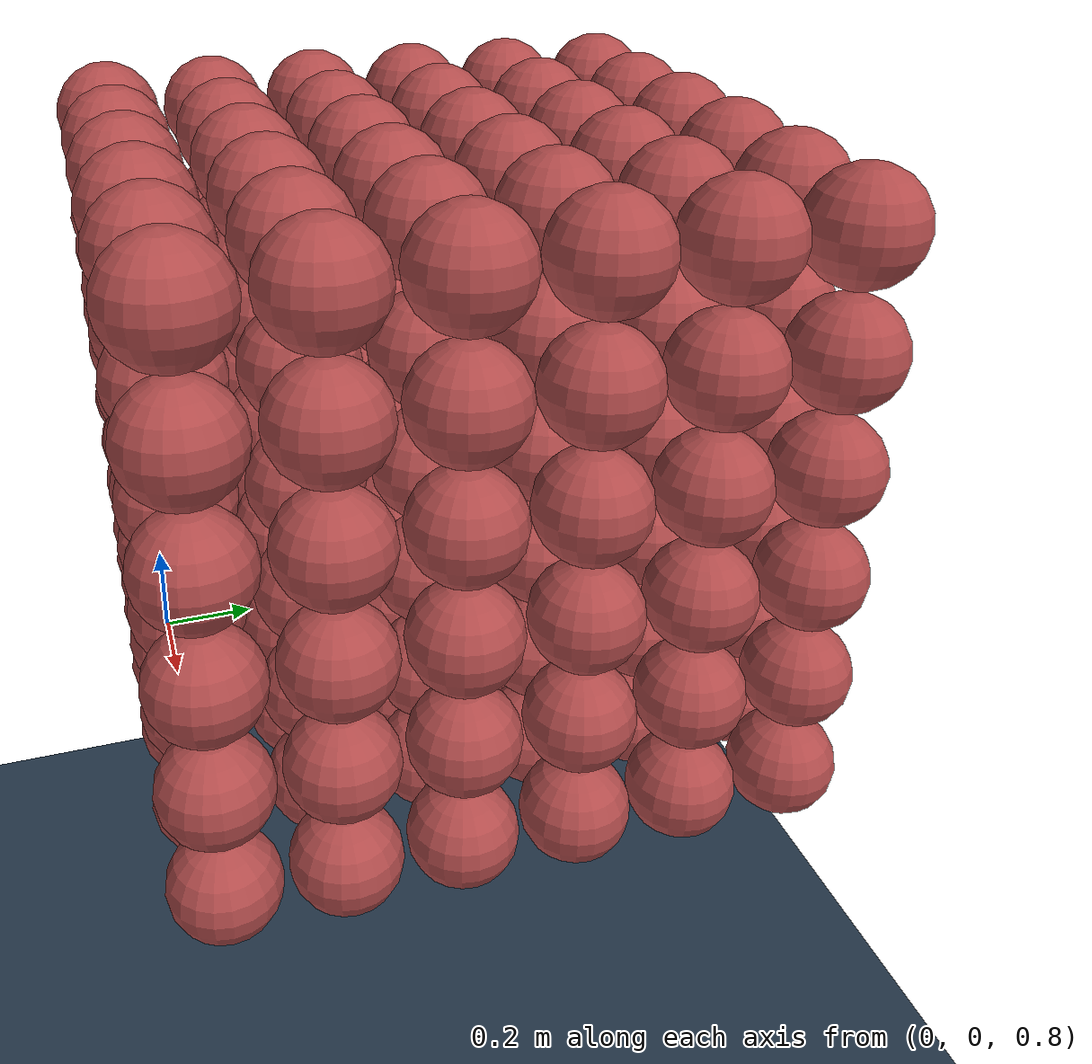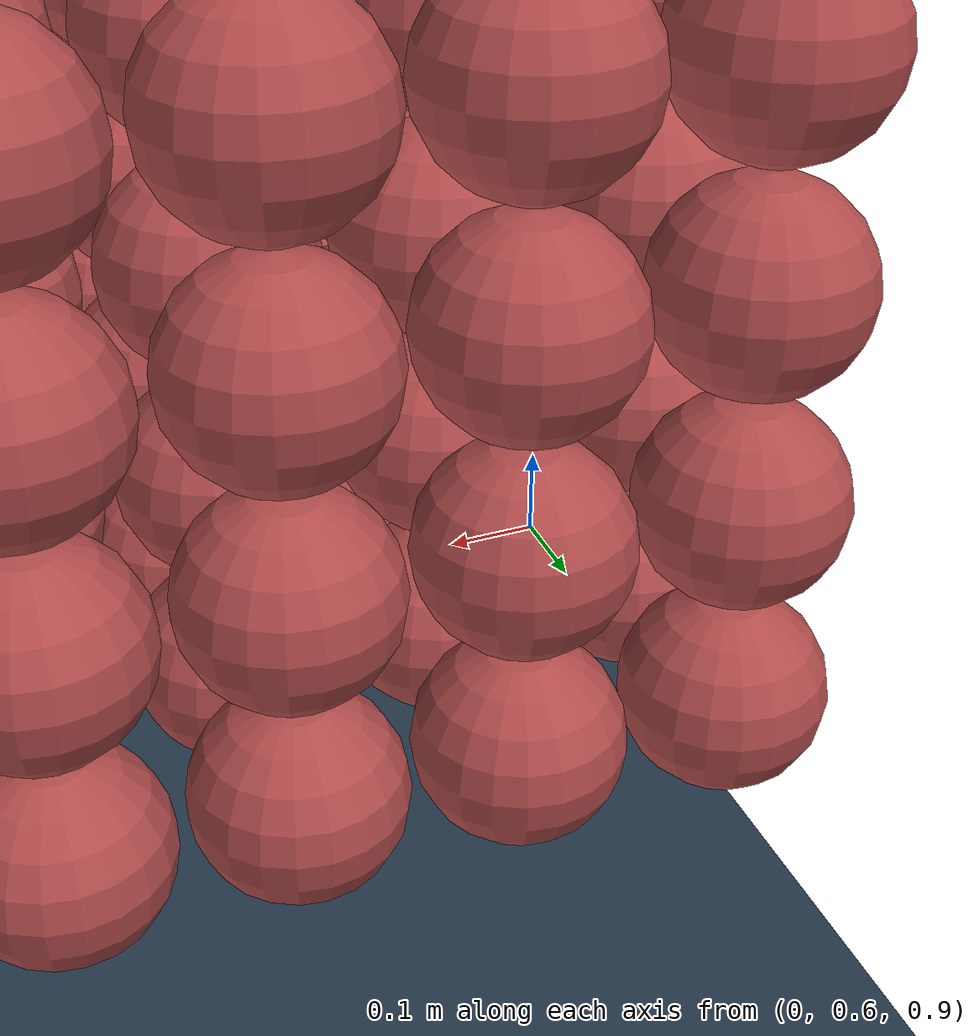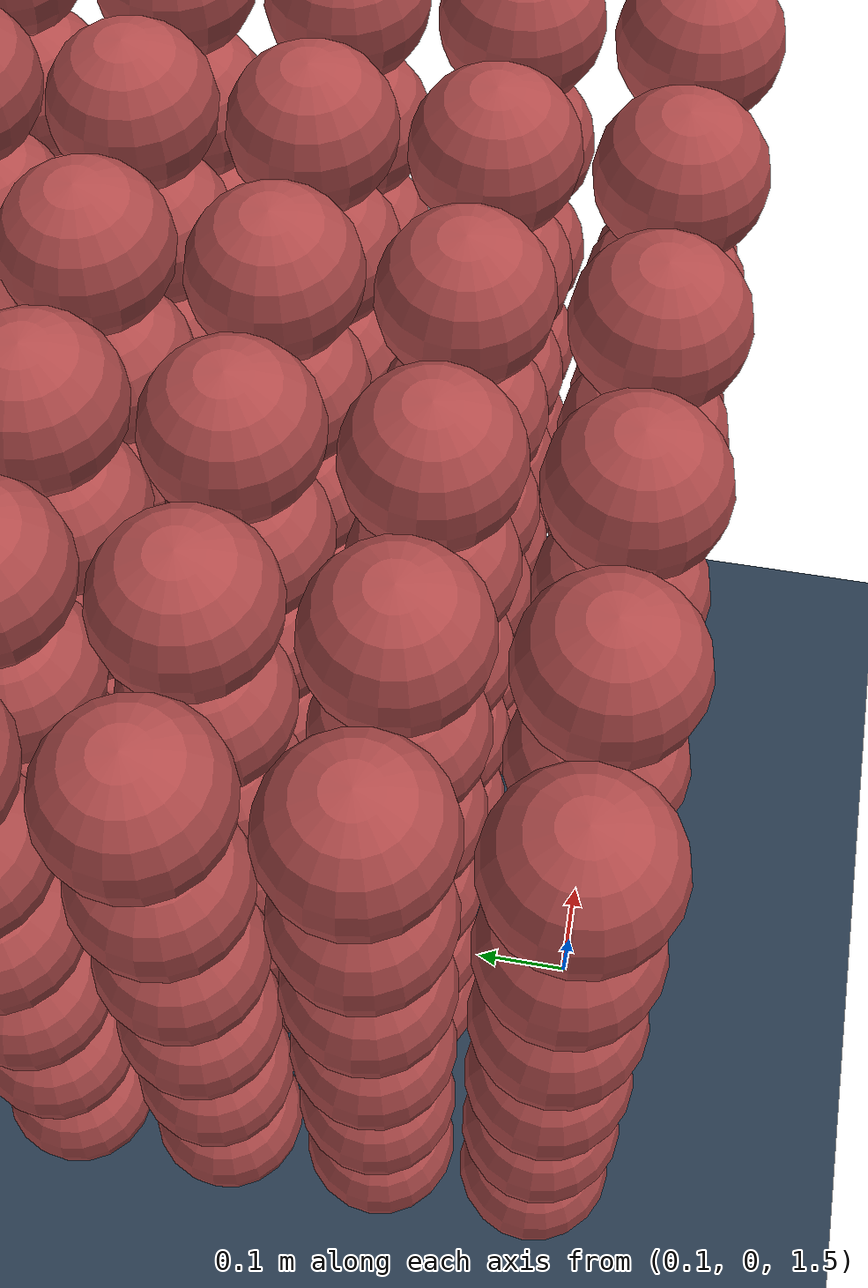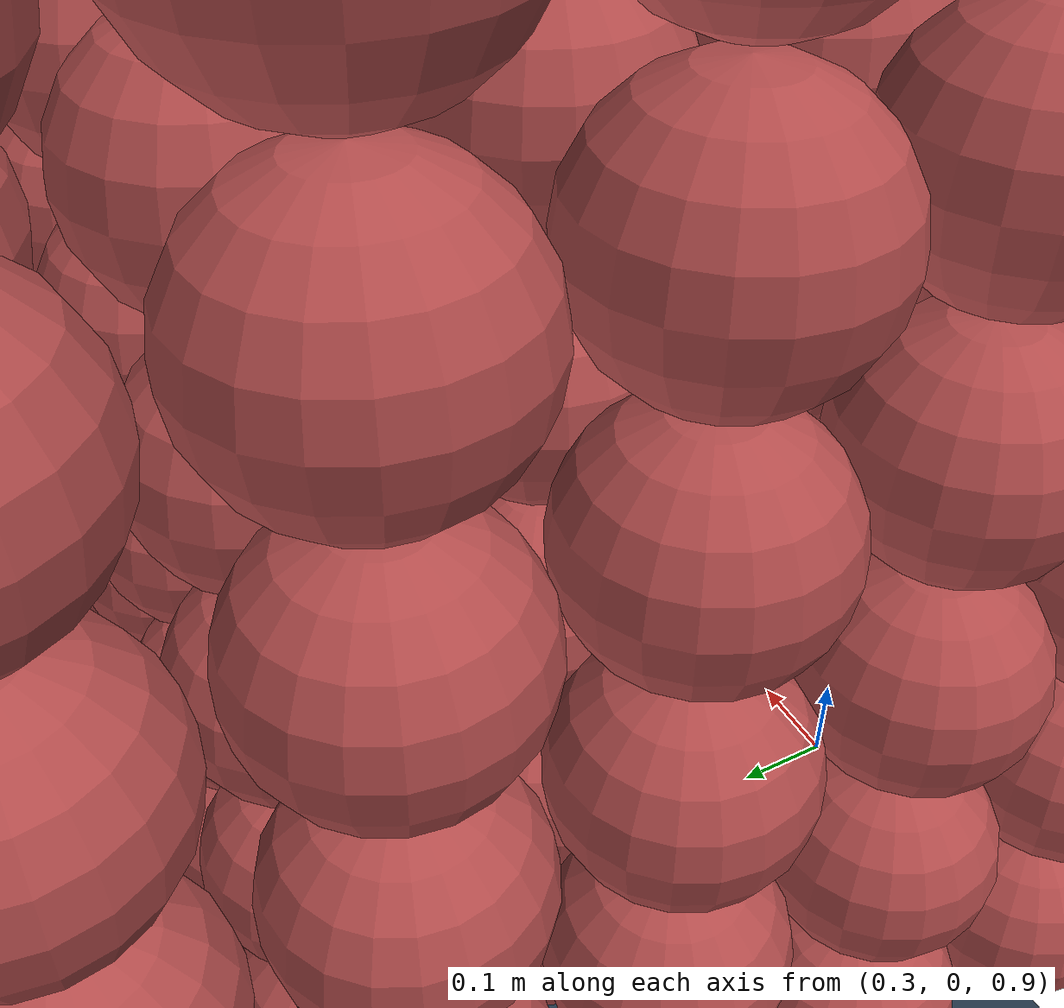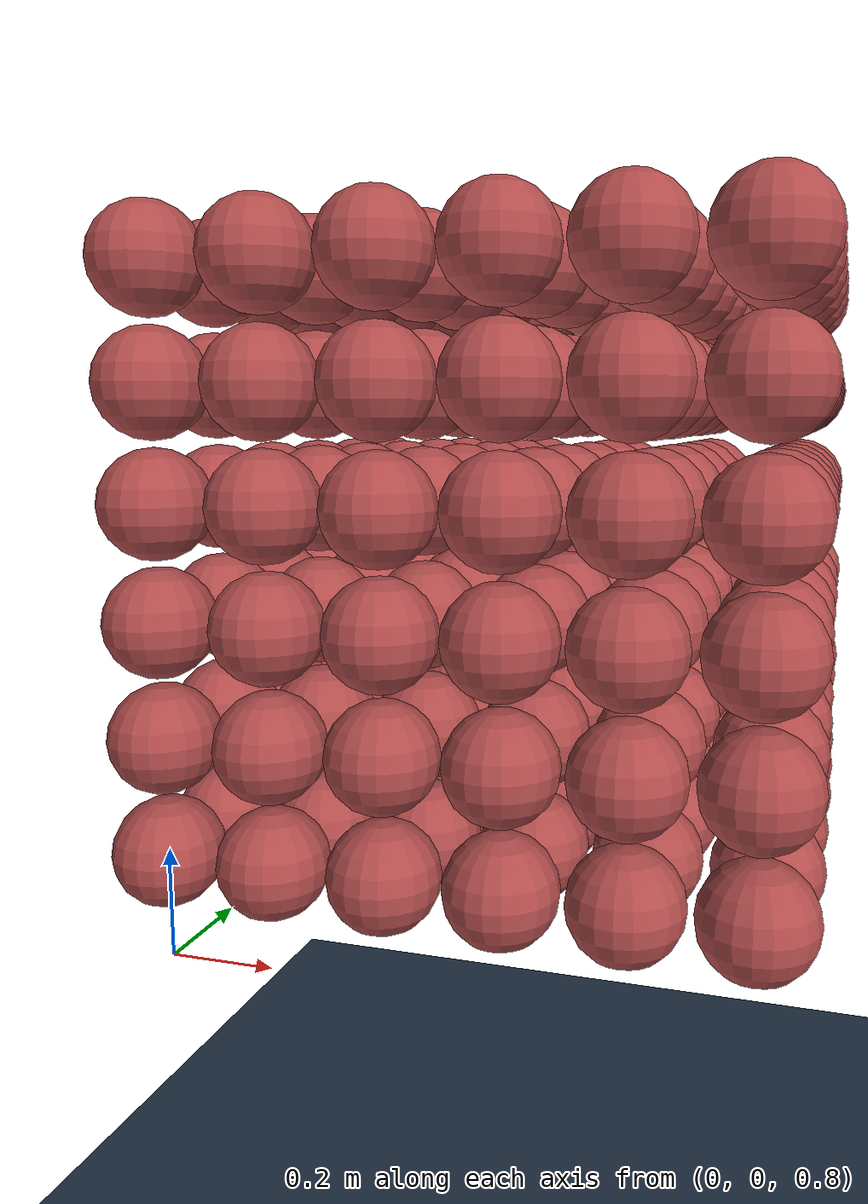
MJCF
<mujoco model="benchmark_case">
    <compiler inertiafromgeom='auto' angle='radian' eulerseq='zyx'/>
    <size njmax="5000" nconmax="1000" />
    <option timestep='0.005' iterations='50' solver='PGS' gravity='0 0 -9.81'/>

    <asset>
        <texture type="skybox" builtin="gradient" rgb1="0.3 0.5 0.7" rgb2="0 0 0" width="512" height="512"/>
        <texture name="texplane" type="2d" builtin="checker" rgb1=".2 .3 .4" rgb2=".1 0.15 0.2" width="512" height="512" mark="cross" markrgb=".8 .8 .8"/>

        <material name='MatPlane' reflectance='0.1' texture="texplane" texrepeat="1 1" texuniform="true"/>
    </asset>

    <worldbody>
		<light directional='true' diffuse='1 1 1' specular='0.3 0.3 0.3' pos='0 0 0' dir='0 -.5 -1'/>
        <light directional='true' diffuse='1 1 1' specular='0.3 0.3 0.3' pos='0 0 0' dir='.25 .25 -1'/>
        <geom name="floor" pos="0 0 0" size="0 0 .25" type="plane" material="MatPlane" condim="3"/>
        <body name="ball_0" pos="0.000000 0.000000 1.000000"><geom type="sphere" size="0.100000" mass="10.000000" rgba=".7 .3 .3 1"/>
			<joint type='free'/>
		</body>

        <body name="ball_1" pos="0.000000 0.000000 1.209965"><geom type="sphere" size="0.100000" mass="10.000000" rgba=".7 .3 .3 1"/>
			<joint type='free'/>
		</body>

        <body name="ball_2" pos="0.000000 0.000000 1.419866"><geom type="sphere" size="0.100000" mass="10.000000" rgba=".7 .3 .3 1"/>
			<joint type='free'/>
		</body>

        <body name="ball_3" pos="0.000000 0.000000 1.629703"><geom type="sphere" size="0.100000" mass="10.000000" rgba=".7 .3 .3 1"/>
			<joint type='free'/>
		</body>

        <body name="ball_4" pos="0.000000 0.000000 1.840173"><geom type="sphere" size="0.100000" mass="10.000000" rgba=".7 .3 .3 1"/>
			<joint type='free'/>
		</body>

        <body name="ball_5" pos="0.000000 0.000000 2.049832"><geom type="sphere" size="0.100000" mass="10.000000" rgba=".7 .3 .3 1"/>
			<joint type='free'/>
		</body>

        <body name="ball_6" pos="0.000000 0.209821 1.000000"><geom type="sphere" size="0.100000" mass="10.000000" rgba=".7 .3 .3 1"/>
			<joint type='free'/>
		</body>

        <body name="ball_7" pos="0.000000 0.209934 1.209934"><geom type="sphere" size="0.100000" mass="10.000000" rgba=".7 .3 .3 1"/>
			<joint type='free'/>
		</body>

        <body name="ball_8" pos="0.000000 0.209833 1.419667"><geom type="sphere" size="0.100000" mass="10.000000" rgba=".7 .3 .3 1"/>
			<joint type='free'/>
		</body>

        <body name="ball_9" pos="0.000000 0.209932 1.629797"><geom type="sphere" size="0.100000" mass="10.000000" rgba=".7 .3 .3 1"/>
			<joint type='free'/>
		</body>

        <body name="ball_10" pos="0.000000 0.210114 1.840457"><geom type="sphere" size="0.100000" mass="10.000000" rgba=".7 .3 .3 1"/>
			<joint type='free'/>
		</body>

        <body name="ball_11" pos="0.000000 0.209825 2.049123"><geom type="sphere" size="0.100000" mass="10.000000" rgba=".7 .3 .3 1"/>
			<joint type='free'/>
		</body>

        <body name="ball_12" pos="0.000000 0.420416 1.000000"><geom type="sphere" size="0.100000" mass="10.000000" rgba=".7 .3 .3 1"/>
			<joint type='free'/>
		</body>

        <body name="ball_13" pos="0.000000 0.420170 1.210085"><geom type="sphere" size="0.100000" mass="10.000000" rgba=".7 .3 .3 1"/>
			<joint type='free'/>
		</body>

        <body name="ball_14" pos="0.000000 0.420387 1.420387"><geom type="sphere" size="0.100000" mass="10.000000" rgba=".7 .3 .3 1"/>
			<joint type='free'/>
		</body>

        <body name="ball_15" pos="0.000000 0.420096 1.630144"><geom type="sphere" size="0.100000" mass="10.000000" rgba=".7 .3 .3 1"/>
			<joint type='free'/>
		</body>

        <body name="ball_16" pos="0.000000 0.419681 1.839362"><geom type="sphere" size="0.100000" mass="10.000000" rgba=".7 .3 .3 1"/>
			<joint type='free'/>
		</body>

        <body name="ball_17" pos="0.000000 0.420091 2.050227"><geom type="sphere" size="0.100000" mass="10.000000" rgba=".7 .3 .3 1"/>
			<joint type='free'/>
		</body>

        <body name="ball_18" pos="0.000000 0.630180 1.000000"><geom type="sphere" size="0.100000" mass="10.000000" rgba=".7 .3 .3 1"/>
			<joint type='free'/>
		</body>

        <body name="ball_19" pos="0.000000 0.630086 1.210029"><geom type="sphere" size="0.100000" mass="10.000000" rgba=".7 .3 .3 1"/>
			<joint type='free'/>
		</body>

        <body name="ball_20" pos="0.000000 0.630158 1.420106"><geom type="sphere" size="0.100000" mass="10.000000" rgba=".7 .3 .3 1"/>
			<joint type='free'/>
		</body>

        <body name="ball_21" pos="0.000000 0.630034 1.630034"><geom type="sphere" size="0.100000" mass="10.000000" rgba=".7 .3 .3 1"/>
			<joint type='free'/>
		</body>

        <body name="ball_22" pos="0.000000 0.630366 1.840488"><geom type="sphere" size="0.100000" mass="10.000000" rgba=".7 .3 .3 1"/>
			<joint type='free'/>
		</body>

        <body name="ball_23" pos="0.000000 0.630554 2.050923"><geom type="sphere" size="0.100000" mass="10.000000" rgba=".7 .3 .3 1"/>
			<joint type='free'/>
		</body>

        <body name="ball_24" pos="0.000000 0.839450 1.000000"><geom type="sphere" size="0.100000" mass="10.000000" rgba=".7 .3 .3 1"/>
			<joint type='free'/>
		</body>

        <body name="ball_25" pos="0.000000 0.839765 1.209941"><geom type="sphere" size="0.100000" mass="10.000000" rgba=".7 .3 .3 1"/>
			<joint type='free'/>
		</body>

        <body name="ball_26" pos="0.000000 0.839929 1.419965"><geom type="sphere" size="0.100000" mass="10.000000" rgba=".7 .3 .3 1"/>
			<joint type='free'/>
		</body>

        <body name="ball_27" pos="0.000000 0.840278 1.630208"><geom type="sphere" size="0.100000" mass="10.000000" rgba=".7 .3 .3 1"/>
			<joint type='free'/>
		</body>

        <body name="ball_28" pos="0.000000 0.839939 1.839939"><geom type="sphere" size="0.100000" mass="10.000000" rgba=".7 .3 .3 1"/>
			<joint type='free'/>
		</body>

        <body name="ball_29" pos="0.000000 0.839991 2.049988"><geom type="sphere" size="0.100000" mass="10.000000" rgba=".7 .3 .3 1"/>
			<joint type='free'/>
		</body>

        <body name="ball_30" pos="0.000000 1.049139 1.000000"><geom type="sphere" size="0.100000" mass="10.000000" rgba=".7 .3 .3 1"/>
			<joint type='free'/>
		</body>

        <body name="ball_31" pos="0.000000 1.050791 1.210158"><geom type="sphere" size="0.100000" mass="10.000000" rgba=".7 .3 .3 1"/>
			<joint type='free'/>
		</body>

        <body name="ball_32" pos="0.000000 1.049869 1.419948"><geom type="sphere" size="0.100000" mass="10.000000" rgba=".7 .3 .3 1"/>
			<joint type='free'/>
		</body>

        <body name="ball_33" pos="0.000000 1.050141 1.630085"><geom type="sphere" size="0.100000" mass="10.000000" rgba=".7 .3 .3 1"/>
			<joint type='free'/>
		</body>

        <body name="ball_34" pos="0.000000 1.049984 1.839987"><geom type="sphere" size="0.100000" mass="10.000000" rgba=".7 .3 .3 1"/>
			<joint type='free'/>
		</body>

        <body name="ball_35" pos="0.000000 1.049773 2.049773"><geom type="sphere" size="0.100000" mass="10.000000" rgba=".7 .3 .3 1"/>
			<joint type='free'/>
		</body>

        <body name="ball_36" pos="0.209968 0.000000 1.000000"><geom type="sphere" size="0.100000" mass="10.000000" rgba=".7 .3 .3 1"/>
			<joint type='free'/>
		</body>

        <body name="ball_37" pos="0.210007 0.000000 1.210007"><geom type="sphere" size="0.100000" mass="10.000000" rgba=".7 .3 .3 1"/>
			<joint type='free'/>
		</body>

        <body name="ball_38" pos="0.209884 0.000000 1.419769"><geom type="sphere" size="0.100000" mass="10.000000" rgba=".7 .3 .3 1"/>
			<joint type='free'/>
		</body>

        <body name="ball_39" pos="0.210078 0.000000 1.630234"><geom type="sphere" size="0.100000" mass="10.000000" rgba=".7 .3 .3 1"/>
			<joint type='free'/>
		</body>

        <body name="ball_40" pos="0.209838 0.000000 1.839353"><geom type="sphere" size="0.100000" mass="10.000000" rgba=".7 .3 .3 1"/>
			<joint type='free'/>
		</body>

        <body name="ball_41" pos="0.209855 0.000000 2.049277"><geom type="sphere" size="0.100000" mass="10.000000" rgba=".7 .3 .3 1"/>
			<joint type='free'/>
		</body>

        <body name="ball_42" pos="0.210090 0.210090 1.000000"><geom type="sphere" size="0.100000" mass="10.000000" rgba=".7 .3 .3 1"/>
			<joint type='free'/>
		</body>

        <body name="ball_43" pos="0.209829 0.209829 1.209829"><geom type="sphere" size="0.100000" mass="10.000000" rgba=".7 .3 .3 1"/>
			<joint type='free'/>
		</body>

        <body name="ball_44" pos="0.209841 0.209841 1.419683"><geom type="sphere" size="0.100000" mass="10.000000" rgba=".7 .3 .3 1"/>
			<joint type='free'/>
		</body>

        <body name="ball_45" pos="0.210142 0.210142 1.630427"><geom type="sphere" size="0.100000" mass="10.000000" rgba=".7 .3 .3 1"/>
			<joint type='free'/>
		</body>

        <body name="ball_46" pos="0.210193 0.210193 1.840772"><geom type="sphere" size="0.100000" mass="10.000000" rgba=".7 .3 .3 1"/>
			<joint type='free'/>
		</body>

        <body name="ball_47" pos="0.209804 0.209804 2.049021"><geom type="sphere" size="0.100000" mass="10.000000" rgba=".7 .3 .3 1"/>
			<joint type='free'/>
		</body>

        <body name="ball_48" pos="0.210131 0.420262 1.000000"><geom type="sphere" size="0.100000" mass="10.000000" rgba=".7 .3 .3 1"/>
			<joint type='free'/>
		</body>

        <body name="ball_49" pos="0.209933 0.419865 1.209933"><geom type="sphere" size="0.100000" mass="10.000000" rgba=".7 .3 .3 1"/>
			<joint type='free'/>
		</body>

        <body name="ball_50" pos="0.209987 0.419973 1.419973"><geom type="sphere" size="0.100000" mass="10.000000" rgba=".7 .3 .3 1"/>
			<joint type='free'/>
		</body>

        <body name="ball_51" pos="0.210164 0.420328 1.630492"><geom type="sphere" size="0.100000" mass="10.000000" rgba=".7 .3 .3 1"/>
			<joint type='free'/>
		</body>

        <body name="ball_52" pos="0.209906 0.419812 1.839624"><geom type="sphere" size="0.100000" mass="10.000000" rgba=".7 .3 .3 1"/>
			<joint type='free'/>
		</body>

        <body name="ball_53" pos="0.210093 0.420187 2.050466"><geom type="sphere" size="0.100000" mass="10.000000" rgba=".7 .3 .3 1"/>
			<joint type='free'/>
		</body>

        <body name="ball_54" pos="0.210157 0.630472 1.000000"><geom type="sphere" size="0.100000" mass="10.000000" rgba=".7 .3 .3 1"/>
			<joint type='free'/>
		</body>

        <body name="ball_55" pos="0.209801 0.629403 1.209801"><geom type="sphere" size="0.100000" mass="10.000000" rgba=".7 .3 .3 1"/>
			<joint type='free'/>
		</body>

        <body name="ball_56" pos="0.209890 0.629670 1.419780"><geom type="sphere" size="0.100000" mass="10.000000" rgba=".7 .3 .3 1"/>
			<joint type='free'/>
		</body>

        <body name="ball_57" pos="0.210001 0.630004 1.630004"><geom type="sphere" size="0.100000" mass="10.000000" rgba=".7 .3 .3 1"/>
			<joint type='free'/>
		</body>

        <body name="ball_58" pos="0.209894 0.629682 1.839576"><geom type="sphere" size="0.100000" mass="10.000000" rgba=".7 .3 .3 1"/>
			<joint type='free'/>
		</body>

        <body name="ball_59" pos="0.210209 0.630626 2.051044"><geom type="sphere" size="0.100000" mass="10.000000" rgba=".7 .3 .3 1"/>
			<joint type='free'/>
		</body>

        <body name="ball_60" pos="0.210205 0.840822 1.000000"><geom type="sphere" size="0.100000" mass="10.000000" rgba=".7 .3 .3 1"/>
			<joint type='free'/>
		</body>

        <body name="ball_61" pos="0.210152 0.840608 1.210152"><geom type="sphere" size="0.100000" mass="10.000000" rgba=".7 .3 .3 1"/>
			<joint type='free'/>
		</body>

        <body name="ball_62" pos="0.209824 0.839295 1.419648"><geom type="sphere" size="0.100000" mass="10.000000" rgba=".7 .3 .3 1"/>
			<joint type='free'/>
		</body>

        <body name="ball_63" pos="0.210128 0.840511 1.630383"><geom type="sphere" size="0.100000" mass="10.000000" rgba=".7 .3 .3 1"/>
			<joint type='free'/>
		</body>

        <body name="ball_64" pos="0.210003 0.840013 1.840013"><geom type="sphere" size="0.100000" mass="10.000000" rgba=".7 .3 .3 1"/>
			<joint type='free'/>
		</body>

        <body name="ball_65" pos="0.209985 0.839939 2.049924"><geom type="sphere" size="0.100000" mass="10.000000" rgba=".7 .3 .3 1"/>
			<joint type='free'/>
		</body>

        <body name="ball_66" pos="0.209883 1.049415 1.000000"><geom type="sphere" size="0.100000" mass="10.000000" rgba=".7 .3 .3 1"/>
			<joint type='free'/>
		</body>

        <body name="ball_67" pos="0.210003 1.050014 1.210003"><geom type="sphere" size="0.100000" mass="10.000000" rgba=".7 .3 .3 1"/>
			<joint type='free'/>
		</body>

        <body name="ball_68" pos="0.210014 1.050072 1.420029"><geom type="sphere" size="0.100000" mass="10.000000" rgba=".7 .3 .3 1"/>
			<joint type='free'/>
		</body>

        <body name="ball_69" pos="0.209808 1.049039 1.629423"><geom type="sphere" size="0.100000" mass="10.000000" rgba=".7 .3 .3 1"/>
			<joint type='free'/>
		</body>

        <body name="ball_70" pos="0.210072 1.050359 1.840288"><geom type="sphere" size="0.100000" mass="10.000000" rgba=".7 .3 .3 1"/>
			<joint type='free'/>
		</body>

        <body name="ball_71" pos="0.209792 1.048961 2.048961"><geom type="sphere" size="0.100000" mass="10.000000" rgba=".7 .3 .3 1"/>
			<joint type='free'/>
		</body>

        <body name="ball_72" pos="0.419819 0.000000 1.000000"><geom type="sphere" size="0.100000" mass="10.000000" rgba=".7 .3 .3 1"/>
			<joint type='free'/>
		</body>

        <body name="ball_73" pos="0.420205 0.000000 1.210103"><geom type="sphere" size="0.100000" mass="10.000000" rgba=".7 .3 .3 1"/>
			<joint type='free'/>
		</body>

        <body name="ball_74" pos="0.420009 0.000000 1.420009"><geom type="sphere" size="0.100000" mass="10.000000" rgba=".7 .3 .3 1"/>
			<joint type='free'/>
		</body>

        <body name="ball_75" pos="0.419713 0.000000 1.629569"><geom type="sphere" size="0.100000" mass="10.000000" rgba=".7 .3 .3 1"/>
			<joint type='free'/>
		</body>

        <body name="ball_76" pos="0.419762 0.000000 1.839524"><geom type="sphere" size="0.100000" mass="10.000000" rgba=".7 .3 .3 1"/>
			<joint type='free'/>
		</body>

        <body name="ball_77" pos="0.420150 0.000000 2.050374"><geom type="sphere" size="0.100000" mass="10.000000" rgba=".7 .3 .3 1"/>
			<joint type='free'/>
		</body>

        <body name="ball_78" pos="0.419976 0.209988 1.000000"><geom type="sphere" size="0.100000" mass="10.000000" rgba=".7 .3 .3 1"/>
			<joint type='free'/>
		</body>

        <body name="ball_79" pos="0.420295 0.210148 1.210148"><geom type="sphere" size="0.100000" mass="10.000000" rgba=".7 .3 .3 1"/>
			<joint type='free'/>
		</body>

        <body name="ball_80" pos="0.419700 0.209850 1.419700"><geom type="sphere" size="0.100000" mass="10.000000" rgba=".7 .3 .3 1"/>
			<joint type='free'/>
		</body>

        <body name="ball_81" pos="0.419700 0.209850 1.629550"><geom type="sphere" size="0.100000" mass="10.000000" rgba=".7 .3 .3 1"/>
			<joint type='free'/>
		</body>

        <body name="ball_82" pos="0.419958 0.209979 1.839915"><geom type="sphere" size="0.100000" mass="10.000000" rgba=".7 .3 .3 1"/>
			<joint type='free'/>
		</body>

        <body name="ball_83" pos="0.419612 0.209806 2.049029"><geom type="sphere" size="0.100000" mass="10.000000" rgba=".7 .3 .3 1"/>
			<joint type='free'/>
		</body>

        <body name="ball_84" pos="0.419607 0.419607 1.000000"><geom type="sphere" size="0.100000" mass="10.000000" rgba=".7 .3 .3 1"/>
			<joint type='free'/>
		</body>

        <body name="ball_85" pos="0.420014 0.420014 1.210007"><geom type="sphere" size="0.100000" mass="10.000000" rgba=".7 .3 .3 1"/>
			<joint type='free'/>
		</body>

        <body name="ball_86" pos="0.420164 0.420164 1.420164"><geom type="sphere" size="0.100000" mass="10.000000" rgba=".7 .3 .3 1"/>
			<joint type='free'/>
		</body>

        <body name="ball_87" pos="0.419674 0.419674 1.629511"><geom type="sphere" size="0.100000" mass="10.000000" rgba=".7 .3 .3 1"/>
			<joint type='free'/>
		</body>

        <body name="ball_88" pos="0.420097 0.420097 1.840194"><geom type="sphere" size="0.100000" mass="10.000000" rgba=".7 .3 .3 1"/>
			<joint type='free'/>
		</body>

        <body name="ball_89" pos="0.419918 0.419918 2.049795"><geom type="sphere" size="0.100000" mass="10.000000" rgba=".7 .3 .3 1"/>
			<joint type='free'/>
		</body>

        <body name="ball_90" pos="0.420178 0.630267 1.000000"><geom type="sphere" size="0.100000" mass="10.000000" rgba=".7 .3 .3 1"/>
			<joint type='free'/>
		</body>

        <body name="ball_91" pos="0.420027 0.630040 1.210013"><geom type="sphere" size="0.100000" mass="10.000000" rgba=".7 .3 .3 1"/>
			<joint type='free'/>
		</body>

        <body name="ball_92" pos="0.420366 0.630548 1.420366"><geom type="sphere" size="0.100000" mass="10.000000" rgba=".7 .3 .3 1"/>
			<joint type='free'/>
		</body>

        <body name="ball_93" pos="0.420326 0.630488 1.630488"><geom type="sphere" size="0.100000" mass="10.000000" rgba=".7 .3 .3 1"/>
			<joint type='free'/>
		</body>

        <body name="ball_94" pos="0.420340 0.630510 1.840680"><geom type="sphere" size="0.100000" mass="10.000000" rgba=".7 .3 .3 1"/>
			<joint type='free'/>
		</body>

        <body name="ball_95" pos="0.419882 0.629823 2.049704"><geom type="sphere" size="0.100000" mass="10.000000" rgba=".7 .3 .3 1"/>
			<joint type='free'/>
		</body>

        <body name="ball_96" pos="0.420378 0.840757 1.000000"><geom type="sphere" size="0.100000" mass="10.000000" rgba=".7 .3 .3 1"/>
			<joint type='free'/>
		</body>

        <body name="ball_97" pos="0.419760 0.839520 1.209880"><geom type="sphere" size="0.100000" mass="10.000000" rgba=".7 .3 .3 1"/>
			<joint type='free'/>
		</body>

        <body name="ball_98" pos="0.419656 0.839311 1.419656"><geom type="sphere" size="0.100000" mass="10.000000" rgba=".7 .3 .3 1"/>
			<joint type='free'/>
		</body>

        <body name="ball_99" pos="0.419767 0.839535 1.629651"><geom type="sphere" size="0.100000" mass="10.000000" rgba=".7 .3 .3 1"/>
			<joint type='free'/>
		</body>

        <body name="ball_100" pos="0.419909 0.839818 1.839818"><geom type="sphere" size="0.100000" mass="10.000000" rgba=".7 .3 .3 1"/>
			<joint type='free'/>
		</body>

        <body name="ball_101" pos="0.419662 0.839323 2.049154"><geom type="sphere" size="0.100000" mass="10.000000" rgba=".7 .3 .3 1"/>
			<joint type='free'/>
		</body>

        <body name="ball_102" pos="0.419606 1.049016 1.000000"><geom type="sphere" size="0.100000" mass="10.000000" rgba=".7 .3 .3 1"/>
			<joint type='free'/>
		</body>

        <body name="ball_103" pos="0.419842 1.049606 1.209921"><geom type="sphere" size="0.100000" mass="10.000000" rgba=".7 .3 .3 1"/>
			<joint type='free'/>
		</body>

        <body name="ball_104" pos="0.419700 1.049249 1.419700"><geom type="sphere" size="0.100000" mass="10.000000" rgba=".7 .3 .3 1"/>
			<joint type='free'/>
		</body>

        <body name="ball_105" pos="0.419985 1.049963 1.629978"><geom type="sphere" size="0.100000" mass="10.000000" rgba=".7 .3 .3 1"/>
			<joint type='free'/>
		</body>

        <body name="ball_106" pos="0.420333 1.050833 1.840666"><geom type="sphere" size="0.100000" mass="10.000000" rgba=".7 .3 .3 1"/>
			<joint type='free'/>
		</body>

        <body name="ball_107" pos="0.420260 1.050650 2.050650"><geom type="sphere" size="0.100000" mass="10.000000" rgba=".7 .3 .3 1"/>
			<joint type='free'/>
		</body>

        <body name="ball_108" pos="0.629847 0.000000 1.000000"><geom type="sphere" size="0.100000" mass="10.000000" rgba=".7 .3 .3 1"/>
			<joint type='free'/>
		</body>

        <body name="ball_109" pos="0.630396 0.000000 1.210132"><geom type="sphere" size="0.100000" mass="10.000000" rgba=".7 .3 .3 1"/>
			<joint type='free'/>
		</body>

        <body name="ball_110" pos="0.629472 0.000000 1.419648"><geom type="sphere" size="0.100000" mass="10.000000" rgba=".7 .3 .3 1"/>
			<joint type='free'/>
		</body>

        <body name="ball_111" pos="0.630410 0.000000 1.630410"><geom type="sphere" size="0.100000" mass="10.000000" rgba=".7 .3 .3 1"/>
			<joint type='free'/>
		</body>

        <body name="ball_112" pos="0.629954 0.000000 1.839939"><geom type="sphere" size="0.100000" mass="10.000000" rgba=".7 .3 .3 1"/>
			<joint type='free'/>
		</body>

        <body name="ball_113" pos="0.630317 0.000000 2.050528"><geom type="sphere" size="0.100000" mass="10.000000" rgba=".7 .3 .3 1"/>
			<joint type='free'/>
		</body>

        <body name="ball_114" pos="0.629611 0.209870 1.000000"><geom type="sphere" size="0.100000" mass="10.000000" rgba=".7 .3 .3 1"/>
			<joint type='free'/>
		</body>

        <body name="ball_115" pos="0.630267 0.210089 1.210089"><geom type="sphere" size="0.100000" mass="10.000000" rgba=".7 .3 .3 1"/>
			<joint type='free'/>
		</body>

        <body name="ball_116" pos="0.630404 0.210135 1.420269"><geom type="sphere" size="0.100000" mass="10.000000" rgba=".7 .3 .3 1"/>
			<joint type='free'/>
		</body>

        <body name="ball_117" pos="0.629523 0.209841 1.629523"><geom type="sphere" size="0.100000" mass="10.000000" rgba=".7 .3 .3 1"/>
			<joint type='free'/>
		</body>

        <body name="ball_118" pos="0.629779 0.209926 1.839706"><geom type="sphere" size="0.100000" mass="10.000000" rgba=".7 .3 .3 1"/>
			<joint type='free'/>
		</body>

        <body name="ball_119" pos="0.630313 0.210104 2.050521"><geom type="sphere" size="0.100000" mass="10.000000" rgba=".7 .3 .3 1"/>
			<joint type='free'/>
		</body>

        <body name="ball_120" pos="0.630550 0.420367 1.000000"><geom type="sphere" size="0.100000" mass="10.000000" rgba=".7 .3 .3 1"/>
			<joint type='free'/>
		</body>

        <body name="ball_121" pos="0.630286 0.420190 1.210095"><geom type="sphere" size="0.100000" mass="10.000000" rgba=".7 .3 .3 1"/>
			<joint type='free'/>
		</body>

        <body name="ball_122" pos="0.630347 0.420232 1.420232"><geom type="sphere" size="0.100000" mass="10.000000" rgba=".7 .3 .3 1"/>
			<joint type='free'/>
		</body>

        <body name="ball_123" pos="0.630095 0.420064 1.630095"><geom type="sphere" size="0.100000" mass="10.000000" rgba=".7 .3 .3 1"/>
			<joint type='free'/>
		</body>

        <body name="ball_124" pos="0.630008 0.420005 1.840011"><geom type="sphere" size="0.100000" mass="10.000000" rgba=".7 .3 .3 1"/>
			<joint type='free'/>
		</body>

        <body name="ball_125" pos="0.629387 0.419591 2.048978"><geom type="sphere" size="0.100000" mass="10.000000" rgba=".7 .3 .3 1"/>
			<joint type='free'/>
		</body>

        <body name="ball_126" pos="0.629791 0.629791 1.000000"><geom type="sphere" size="0.100000" mass="10.000000" rgba=".7 .3 .3 1"/>
			<joint type='free'/>
		</body>

        <body name="ball_127" pos="0.629441 0.629441 1.209814"><geom type="sphere" size="0.100000" mass="10.000000" rgba=".7 .3 .3 1"/>
			<joint type='free'/>
		</body>

        <body name="ball_128" pos="0.629702 0.629702 1.419801"><geom type="sphere" size="0.100000" mass="10.000000" rgba=".7 .3 .3 1"/>
			<joint type='free'/>
		</body>

        <body name="ball_129" pos="0.629895 0.629895 1.629895"><geom type="sphere" size="0.100000" mass="10.000000" rgba=".7 .3 .3 1"/>
			<joint type='free'/>
		</body>

        <body name="ball_130" pos="0.629467 0.629467 1.839289"><geom type="sphere" size="0.100000" mass="10.000000" rgba=".7 .3 .3 1"/>
			<joint type='free'/>
		</body>

        <body name="ball_131" pos="0.629863 0.629863 2.049771"><geom type="sphere" size="0.100000" mass="10.000000" rgba=".7 .3 .3 1"/>
			<joint type='free'/>
		</body>

        <body name="ball_132" pos="0.629612 0.839482 1.000000"><geom type="sphere" size="0.100000" mass="10.000000" rgba=".7 .3 .3 1"/>
			<joint type='free'/>
		</body>

        <body name="ball_133" pos="0.630322 0.840429 1.210107"><geom type="sphere" size="0.100000" mass="10.000000" rgba=".7 .3 .3 1"/>
			<joint type='free'/>
		</body>

        <body name="ball_134" pos="0.629779 0.839705 1.419852"><geom type="sphere" size="0.100000" mass="10.000000" rgba=".7 .3 .3 1"/>
			<joint type='free'/>
		</body>

        <body name="ball_135" pos="0.630014 0.840018 1.630014"><geom type="sphere" size="0.100000" mass="10.000000" rgba=".7 .3 .3 1"/>
			<joint type='free'/>
		</body>

        <body name="ball_136" pos="0.630215 0.840286 1.840286"><geom type="sphere" size="0.100000" mass="10.000000" rgba=".7 .3 .3 1"/>
			<joint type='free'/>
		</body>

        <body name="ball_137" pos="0.629687 0.839582 2.049478"><geom type="sphere" size="0.100000" mass="10.000000" rgba=".7 .3 .3 1"/>
			<joint type='free'/>
		</body>

        <body name="ball_138" pos="0.629894 1.049823 1.000000"><geom type="sphere" size="0.100000" mass="10.000000" rgba=".7 .3 .3 1"/>
			<joint type='free'/>
		</body>

        <body name="ball_139" pos="0.629601 1.049335 1.209867"><geom type="sphere" size="0.100000" mass="10.000000" rgba=".7 .3 .3 1"/>
			<joint type='free'/>
		</body>

        <body name="ball_140" pos="0.630333 1.050555 1.420222"><geom type="sphere" size="0.100000" mass="10.000000" rgba=".7 .3 .3 1"/>
			<joint type='free'/>
		</body>

        <body name="ball_141" pos="0.630331 1.050551 1.630331"><geom type="sphere" size="0.100000" mass="10.000000" rgba=".7 .3 .3 1"/>
			<joint type='free'/>
		</body>

        <body name="ball_142" pos="0.630318 1.050529 1.840423"><geom type="sphere" size="0.100000" mass="10.000000" rgba=".7 .3 .3 1"/>
			<joint type='free'/>
		</body>

        <body name="ball_143" pos="0.630302 1.050503 2.050503"><geom type="sphere" size="0.100000" mass="10.000000" rgba=".7 .3 .3 1"/>
			<joint type='free'/>
		</body>

        <body name="ball_144" pos="0.840241 0.000000 1.000000"><geom type="sphere" size="0.100000" mass="10.000000" rgba=".7 .3 .3 1"/>
			<joint type='free'/>
		</body>

        <body name="ball_145" pos="0.840565 0.000000 1.210141"><geom type="sphere" size="0.100000" mass="10.000000" rgba=".7 .3 .3 1"/>
			<joint type='free'/>
		</body>

        <body name="ball_146" pos="0.839866 0.000000 1.419933"><geom type="sphere" size="0.100000" mass="10.000000" rgba=".7 .3 .3 1"/>
			<joint type='free'/>
		</body>

        <body name="ball_147" pos="0.840567 0.000000 1.630425"><geom type="sphere" size="0.100000" mass="10.000000" rgba=".7 .3 .3 1"/>
			<joint type='free'/>
		</body>

        <body name="ball_148" pos="0.840551 0.000000 1.840551"><geom type="sphere" size="0.100000" mass="10.000000" rgba=".7 .3 .3 1"/>
			<joint type='free'/>
		</body>

        <body name="ball_149" pos="0.839905 0.000000 2.049881"><geom type="sphere" size="0.100000" mass="10.000000" rgba=".7 .3 .3 1"/>
			<joint type='free'/>
		</body>

        <body name="ball_150" pos="0.839182 0.209796 1.000000"><geom type="sphere" size="0.100000" mass="10.000000" rgba=".7 .3 .3 1"/>
			<joint type='free'/>
		</body>

        <body name="ball_151" pos="0.840302 0.210076 1.210076"><geom type="sphere" size="0.100000" mass="10.000000" rgba=".7 .3 .3 1"/>
			<joint type='free'/>
		</body>

        <body name="ball_152" pos="0.840301 0.210075 1.420151"><geom type="sphere" size="0.100000" mass="10.000000" rgba=".7 .3 .3 1"/>
			<joint type='free'/>
		</body>

        <body name="ball_153" pos="0.840403 0.210101 1.630302"><geom type="sphere" size="0.100000" mass="10.000000" rgba=".7 .3 .3 1"/>
			<joint type='free'/>
		</body>

        <body name="ball_154" pos="0.840648 0.210162 1.840648"><geom type="sphere" size="0.100000" mass="10.000000" rgba=".7 .3 .3 1"/>
			<joint type='free'/>
		</body>

        <body name="ball_155" pos="0.840207 0.210052 2.050258"><geom type="sphere" size="0.100000" mass="10.000000" rgba=".7 .3 .3 1"/>
			<joint type='free'/>
		</body>

        <body name="ball_156" pos="0.840730 0.420365 1.000000"><geom type="sphere" size="0.100000" mass="10.000000" rgba=".7 .3 .3 1"/>
			<joint type='free'/>
		</body>

        <body name="ball_157" pos="0.840683 0.420341 1.210171"><geom type="sphere" size="0.100000" mass="10.000000" rgba=".7 .3 .3 1"/>
			<joint type='free'/>
		</body>

        <body name="ball_158" pos="0.839704 0.419852 1.419852"><geom type="sphere" size="0.100000" mass="10.000000" rgba=".7 .3 .3 1"/>
			<joint type='free'/>
		</body>

        <body name="ball_159" pos="0.840777 0.420388 1.630583"><geom type="sphere" size="0.100000" mass="10.000000" rgba=".7 .3 .3 1"/>
			<joint type='free'/>
		</body>

        <body name="ball_160" pos="0.839561 0.419781 1.839561"><geom type="sphere" size="0.100000" mass="10.000000" rgba=".7 .3 .3 1"/>
			<joint type='free'/>
		</body>

        <body name="ball_161" pos="0.840108 0.420054 2.050135"><geom type="sphere" size="0.100000" mass="10.000000" rgba=".7 .3 .3 1"/>
			<joint type='free'/>
		</body>

        <body name="ball_162" pos="0.839956 0.629967 1.000000"><geom type="sphere" size="0.100000" mass="10.000000" rgba=".7 .3 .3 1"/>
			<joint type='free'/>
		</body>

        <body name="ball_163" pos="0.840560 0.630420 1.210140"><geom type="sphere" size="0.100000" mass="10.000000" rgba=".7 .3 .3 1"/>
			<joint type='free'/>
		</body>

        <body name="ball_164" pos="0.839679 0.629759 1.419839"><geom type="sphere" size="0.100000" mass="10.000000" rgba=".7 .3 .3 1"/>
			<joint type='free'/>
		</body>

        <body name="ball_165" pos="0.839176 0.629382 1.629382"><geom type="sphere" size="0.100000" mass="10.000000" rgba=".7 .3 .3 1"/>
			<joint type='free'/>
		</body>

        <body name="ball_166" pos="0.840584 0.630438 1.840584"><geom type="sphere" size="0.100000" mass="10.000000" rgba=".7 .3 .3 1"/>
			<joint type='free'/>
		</body>

        <body name="ball_167" pos="0.840133 0.630100 2.050167"><geom type="sphere" size="0.100000" mass="10.000000" rgba=".7 .3 .3 1"/>
			<joint type='free'/>
		</body>

        <body name="ball_168" pos="0.840104 0.840104 1.000000"><geom type="sphere" size="0.100000" mass="10.000000" rgba=".7 .3 .3 1"/>
			<joint type='free'/>
		</body>

        <body name="ball_169" pos="0.839562 0.839562 1.209890"><geom type="sphere" size="0.100000" mass="10.000000" rgba=".7 .3 .3 1"/>
			<joint type='free'/>
		</body>

        <body name="ball_170" pos="0.840832 0.840832 1.420416"><geom type="sphere" size="0.100000" mass="10.000000" rgba=".7 .3 .3 1"/>
			<joint type='free'/>
		</body>

        <body name="ball_171" pos="0.839450 0.839450 1.629587"><geom type="sphere" size="0.100000" mass="10.000000" rgba=".7 .3 .3 1"/>
			<joint type='free'/>
		</body>

        <body name="ball_172" pos="0.839279 0.839279 1.839279"><geom type="sphere" size="0.100000" mass="10.000000" rgba=".7 .3 .3 1"/>
			<joint type='free'/>
		</body>

        <body name="ball_173" pos="0.839505 0.839505 2.049381"><geom type="sphere" size="0.100000" mass="10.000000" rgba=".7 .3 .3 1"/>
			<joint type='free'/>
		</body>

        <body name="ball_174" pos="0.840389 1.050486 1.000000"><geom type="sphere" size="0.100000" mass="10.000000" rgba=".7 .3 .3 1"/>
			<joint type='free'/>
		</body>

        <body name="ball_175" pos="0.839815 1.049769 1.209954"><geom type="sphere" size="0.100000" mass="10.000000" rgba=".7 .3 .3 1"/>
			<joint type='free'/>
		</body>

        <body name="ball_176" pos="0.840039 1.050049 1.420019"><geom type="sphere" size="0.100000" mass="10.000000" rgba=".7 .3 .3 1"/>
			<joint type='free'/>
		</body>

        <body name="ball_177" pos="0.839864 1.049830 1.629898"><geom type="sphere" size="0.100000" mass="10.000000" rgba=".7 .3 .3 1"/>
			<joint type='free'/>
		</body>

        <body name="ball_178" pos="0.839508 1.049385 1.839508"><geom type="sphere" size="0.100000" mass="10.000000" rgba=".7 .3 .3 1"/>
			<joint type='free'/>
		</body>

        <body name="ball_179" pos="0.839234 1.049042 2.049042"><geom type="sphere" size="0.100000" mass="10.000000" rgba=".7 .3 .3 1"/>
			<joint type='free'/>
		</body>

        <body name="ball_180" pos="1.049972 0.000000 1.000000"><geom type="sphere" size="0.100000" mass="10.000000" rgba=".7 .3 .3 1"/>
			<joint type='free'/>
		</body>

        <body name="ball_181" pos="1.050280 0.000000 1.210056"><geom type="sphere" size="0.100000" mass="10.000000" rgba=".7 .3 .3 1"/>
			<joint type='free'/>
		</body>

        <body name="ball_182" pos="1.050861 0.000000 1.420344"><geom type="sphere" size="0.100000" mass="10.000000" rgba=".7 .3 .3 1"/>
			<joint type='free'/>
		</body>

        <body name="ball_183" pos="1.049551 0.000000 1.629730"><geom type="sphere" size="0.100000" mass="10.000000" rgba=".7 .3 .3 1"/>
			<joint type='free'/>
		</body>

        <body name="ball_184" pos="1.050417 0.000000 1.840334"><geom type="sphere" size="0.100000" mass="10.000000" rgba=".7 .3 .3 1"/>
			<joint type='free'/>
		</body>

        <body name="ball_185" pos="1.049477 0.000000 2.049477"><geom type="sphere" size="0.100000" mass="10.000000" rgba=".7 .3 .3 1"/>
			<joint type='free'/>
		</body>

        <body name="ball_186" pos="1.050181 0.210036 1.000000"><geom type="sphere" size="0.100000" mass="10.000000" rgba=".7 .3 .3 1"/>
			<joint type='free'/>
		</body>

        <body name="ball_187" pos="1.050114 0.210023 1.210023"><geom type="sphere" size="0.100000" mass="10.000000" rgba=".7 .3 .3 1"/>
			<joint type='free'/>
		</body>

        <body name="ball_188" pos="1.049881 0.209976 1.419952"><geom type="sphere" size="0.100000" mass="10.000000" rgba=".7 .3 .3 1"/>
			<joint type='free'/>
		</body>

        <body name="ball_189" pos="1.050800 0.210160 1.630480"><geom type="sphere" size="0.100000" mass="10.000000" rgba=".7 .3 .3 1"/>
			<joint type='free'/>
		</body>

        <body name="ball_190" pos="1.050000 0.210000 1.840000"><geom type="sphere" size="0.100000" mass="10.000000" rgba=".7 .3 .3 1"/>
			<joint type='free'/>
		</body>

        <body name="ball_191" pos="1.049408 0.209882 2.049408"><geom type="sphere" size="0.100000" mass="10.000000" rgba=".7 .3 .3 1"/>
			<joint type='free'/>
		</body>

        <body name="ball_192" pos="1.049450 0.419780 1.000000"><geom type="sphere" size="0.100000" mass="10.000000" rgba=".7 .3 .3 1"/>
			<joint type='free'/>
		</body>

        <body name="ball_193" pos="1.050545 0.420218 1.210109"><geom type="sphere" size="0.100000" mass="10.000000" rgba=".7 .3 .3 1"/>
			<joint type='free'/>
		</body>

        <body name="ball_194" pos="1.049347 0.419739 1.419739"><geom type="sphere" size="0.100000" mass="10.000000" rgba=".7 .3 .3 1"/>
			<joint type='free'/>
		</body>

        <body name="ball_195" pos="1.049559 0.419824 1.629735"><geom type="sphere" size="0.100000" mass="10.000000" rgba=".7 .3 .3 1"/>
			<joint type='free'/>
		</body>

        <body name="ball_196" pos="1.050052 0.420021 1.840041"><geom type="sphere" size="0.100000" mass="10.000000" rgba=".7 .3 .3 1"/>
			<joint type='free'/>
		</body>

        <body name="ball_197" pos="1.049784 0.419914 2.049784"><geom type="sphere" size="0.100000" mass="10.000000" rgba=".7 .3 .3 1"/>
			<joint type='free'/>
		</body>

        <body name="ball_198" pos="1.050752 0.630451 1.000000"><geom type="sphere" size="0.100000" mass="10.000000" rgba=".7 .3 .3 1"/>
			<joint type='free'/>
		</body>

        <body name="ball_199" pos="1.049325 0.629595 1.209865"><geom type="sphere" size="0.100000" mass="10.000000" rgba=".7 .3 .3 1"/>
			<joint type='free'/>
		</body>

        <body name="ball_200" pos="1.050302 0.630181 1.420121"><geom type="sphere" size="0.100000" mass="10.000000" rgba=".7 .3 .3 1"/>
			<joint type='free'/>
		</body>

        <body name="ball_201" pos="1.048963 0.629378 1.629378"><geom type="sphere" size="0.100000" mass="10.000000" rgba=".7 .3 .3 1"/>
			<joint type='free'/>
		</body>

        <body name="ball_202" pos="1.050019 0.630011 1.840015"><geom type="sphere" size="0.100000" mass="10.000000" rgba=".7 .3 .3 1"/>
			<joint type='free'/>
		</body>

        <body name="ball_203" pos="1.050954 0.630573 2.050954"><geom type="sphere" size="0.100000" mass="10.000000" rgba=".7 .3 .3 1"/>
			<joint type='free'/>
		</body>

        <body name="ball_204" pos="1.049801 0.839841 1.000000"><geom type="sphere" size="0.100000" mass="10.000000" rgba=".7 .3 .3 1"/>
			<joint type='free'/>
		</body>

        <body name="ball_205" pos="1.049320 0.839456 1.209864"><geom type="sphere" size="0.100000" mass="10.000000" rgba=".7 .3 .3 1"/>
			<joint type='free'/>
		</body>

        <body name="ball_206" pos="1.049077 0.839262 1.419631"><geom type="sphere" size="0.100000" mass="10.000000" rgba=".7 .3 .3 1"/>
			<joint type='free'/>
		</body>

        <body name="ball_207" pos="1.049822 0.839858 1.629893"><geom type="sphere" size="0.100000" mass="10.000000" rgba=".7 .3 .3 1"/>
			<joint type='free'/>
		</body>

        <body name="ball_208" pos="1.049669 0.839735 1.839735"><geom type="sphere" size="0.100000" mass="10.000000" rgba=".7 .3 .3 1"/>
			<joint type='free'/>
		</body>

        <body name="ball_209" pos="1.050665 0.840532 2.050665"><geom type="sphere" size="0.100000" mass="10.000000" rgba=".7 .3 .3 1"/>
			<joint type='free'/>
		</body>

        <body name="ball_210" pos="1.048989 1.048989 1.000000"><geom type="sphere" size="0.100000" mass="10.000000" rgba=".7 .3 .3 1"/>
			<joint type='free'/>
		</body>

        <body name="ball_211" pos="1.050601 1.050601 1.210120"><geom type="sphere" size="0.100000" mass="10.000000" rgba=".7 .3 .3 1"/>
			<joint type='free'/>
		</body>

        <body name="ball_212" pos="1.050485 1.050485 1.420194"><geom type="sphere" size="0.100000" mass="10.000000" rgba=".7 .3 .3 1"/>
			<joint type='free'/>
		</body>

        <body name="ball_213" pos="1.049718 1.049718 1.629831"><geom type="sphere" size="0.100000" mass="10.000000" rgba=".7 .3 .3 1"/>
			<joint type='free'/>
		</body>

        <body name="ball_214" pos="1.050738 1.050738 1.840591"><geom type="sphere" size="0.100000" mass="10.000000" rgba=".7 .3 .3 1"/>
			<joint type='free'/>
		</body>

        <body name="ball_215" pos="1.049401 1.049401 2.049401"><geom type="sphere" size="0.100000" mass="10.000000" rgba=".7 .3 .3 1"/>
			<joint type='free'/>
		</body>
    </worldbody>
</mujoco>
